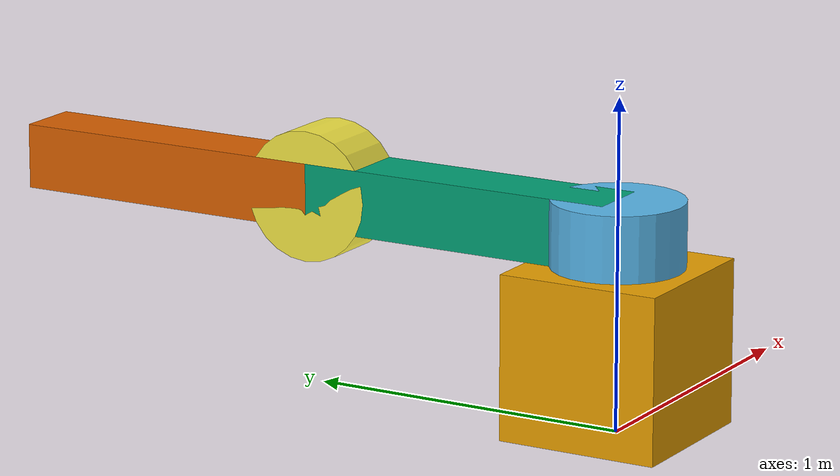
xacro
<?xml version="1.0" ?>

<robot name="r2d2">
    <link name="base_link">
        <visual>
            <origin rpy="0 0 0" xyz="0 0 0.25"/>
            <geometry>
                <box size=".5 .5 .5"/>
            </geometry>
        </visual>
    </link>

    <joint name="joint1" type="revolute">
        <axis xyz="0 0 1" />
        <limit effort="1000.0" lower="-3.14" upper="3.14" velocity="0.5" />
        <origin rpy="0 0 0" xyz="0 0 0.5"/>
        <parent link="base_link"/>
        <child link="link1"/>
    </joint>

    <link name="link1">
        <visual>
            <origin rpy="0 0 0" xyz="0 0 0.1"/>
            <geometry>
                <cylinder radius="0.2" length="0.2"/>
            </geometry>
        </visual>
    </link>
    <joint name="link_01_link_02" type="fixed">
        <origin xyz="0 0 0"/>
        <parent link="link1"/>
        <child link="link2"/>
    </joint>

    <link name="link2">
        <visual>
            <origin rpy="0 0 0" xyz="0 0.5 0.1"/>
            <geometry>
                <box size=".2 1 .2"/>
            </geometry>
        </visual>
    </link>

    <joint name="link_02_link_03" type="fixed">
        <origin xyz="0 0 0"/>
        <parent link="link2"/>
        <child link="link3"/>
    </joint>

    <link name="link3">
        <visual>
            <origin rpy="0 1.5708 0" xyz="0 1 0.1"/>
            <geometry>
                <cylinder radius="0.2" length="0.2"/>
            </geometry>
        </visual>
    </link>
    <joint name="joint2" type="revolute">
        <axis xyz="1 0 0" />
        <limit effort="1000.0" lower="-3.14" upper="3.14" velocity="0.5" />
        <origin rpy="0 0 0" xyz="0 1 0.1"/>
        <parent link="link3"/>
        <child link="link4"/>
    </joint>
    <link name="link4">
        <visual>
            <origin rpy="0 1.5708 0" xyz="0 0 0"/>
            <geometry>
                <cylinder radius="0.2" length="0.2"/>
            </geometry>
        </visual>
    </link>
    <joint name="link_04_link_05" type="fixed">
        <origin xyz="0 0 0"/>
        <parent link="link4"/>
        <child link="link5"/>
    </joint>

    <link name="link5">
        <visual>
            <origin rpy="0 0 0" xyz="0 0.5 0"/>
            <geometry>
                <box size=".2 1 .2"/>
            </geometry>
        </visual>
    </link>

</robot>
